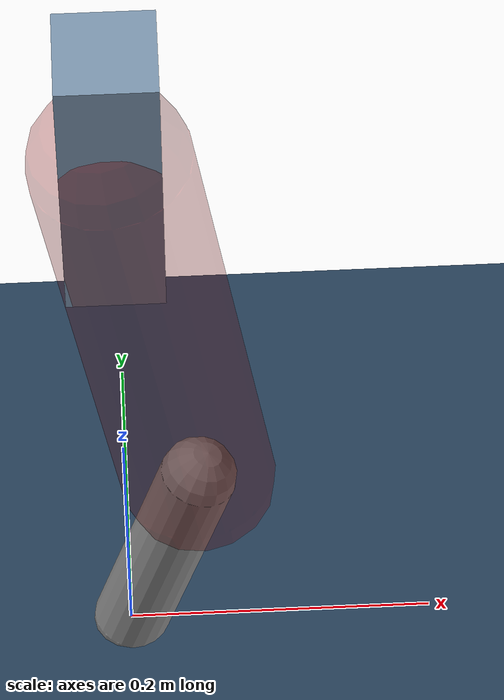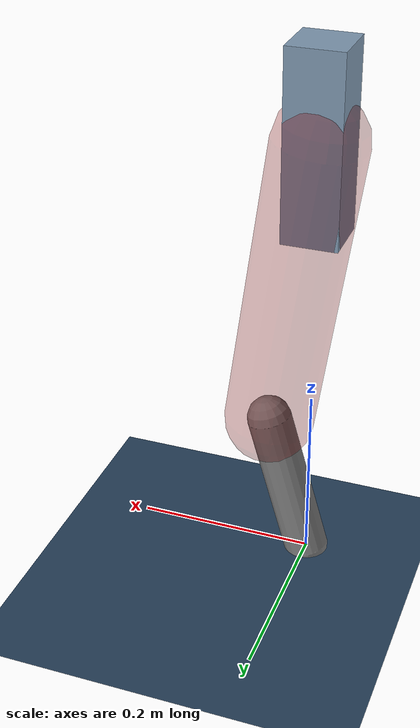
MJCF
<mujoco model="Hopper2D">
	<compiler inertiafromgeom="true" angle="radian" />
	<option timestep="0.001" integrator="implicit" cone="elliptic" solver="Newton" tolerance="1e-10" />

	<default>
		<geom contype="1" conaffinity="1" condim="3" friction="2 0.005 0.0001" solref="0.005 1" />
		<joint limited="true" damping="0.1" />
	</default>

	<asset>
		<texture name="skybox" type="skybox" builtin="gradient" rgb1=".4 .6 .8" rgb2="0 0 0" width="800" height="800" />
		<texture name="grid" type="2d" builtin="checker" rgb1=".1 .2 .3" rgb2=".2 .3 .4" width="300" height="300" mark="edge" markrgb=".2 .3 .4" />
		<material name="ground" texture="grid" texrepeat="1 1" texuniform="true" reflectance="0.1" />
		<material name="leg" rgba="0.5 0.6 0.7 1" />
	</asset>

	<worldbody>

		<geom name="floor" type="plane" size="5 5 0.25" material="ground" />

		<light directional="false" diffuse="0.8 0.8 0.8" specular="0.3 0.3 0.3" pos="0 0 2" dir="0 0 -1" />
		<light mode="targetbodycom" target="base" directional="false" diffuse="0.8 0.8 0.8" specular="0.3 0.3 0.3" pos="0 0 2" dir="0 0 -1" />

		<camera name="fixed" pos="0 -2 1" xyaxes="1 0 0 0 0 1" />
		<camera name="tracking" mode="trackcom" pos="0 -3 1" />

		<body name="root" pos="0 0 0.49479483982867145">
			<joint name="slide_x" type="slide" axis="1 0 0" range="-100 100" />
			<joint name="slide_z" type="slide" axis="0 0 1" range="0 10" />

			<body name="base" pos="0 0 0">
				<geom name="torso" type="box" size="0.03 0.03 0.1" mass="3.578" material="leg" />

				<body name="link1" pos="0 0 0" euler="0 1.4277979087108617 0">
					<joint type="hinge" axis="0 -1 0" pos="0 0 0" name="hinge1" limited="true" range="-3.14 3.14" stiffness="0" damping="0.1" />
					<geom name="thigh" type="capsule" fromto="0 0 0 0.33208290529985673 0 0" size="0.05" rgba="0.5 0 0 0.3" mass="1.0766321348395989" />

					<body name="link2" pos="0.33208290529985673 0 0" euler="0 0.4205637315808485 0">
						<joint type="hinge" axis="0 -1 0" pos="0 0 0" name="hinge2" limited="true" range="-3.14 3.14" stiffness="0" damping="0.1" />
						<geom name="shank" type="capsule" fromto="0 0 0 0.17271193452881467 0 0" size="0.025" mass="0.3776407410759332" />

					</body>
				</body>
			</body>
		</body>
	</worldbody>

	<actuator>
		<motor name="torque1" joint="hinge1" ctrlrange="-226.20847042328242 226.20847042328242" ctrllimited="true" gear="1" />
		<motor name="torque2" joint="hinge2" ctrlrange="-43.53483655863442 43.53483655863442" ctrllimited="true" gear="1" />
	</actuator>
</mujoco>
